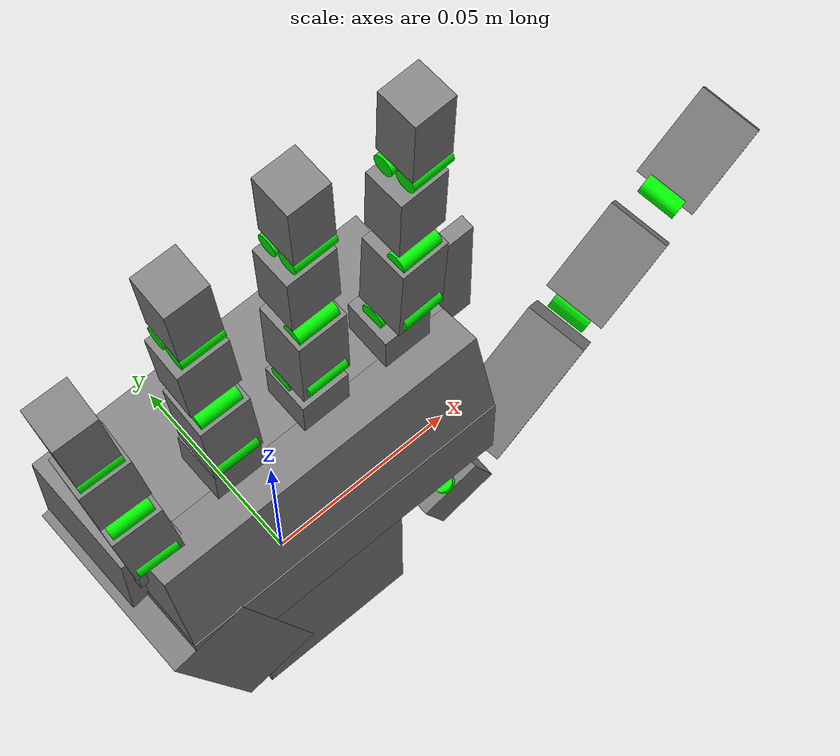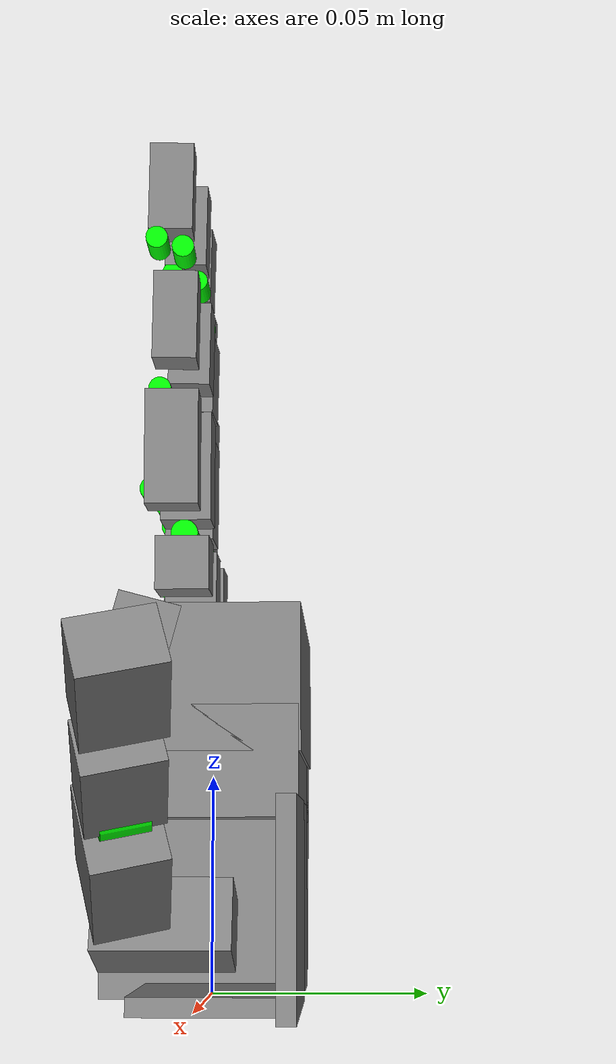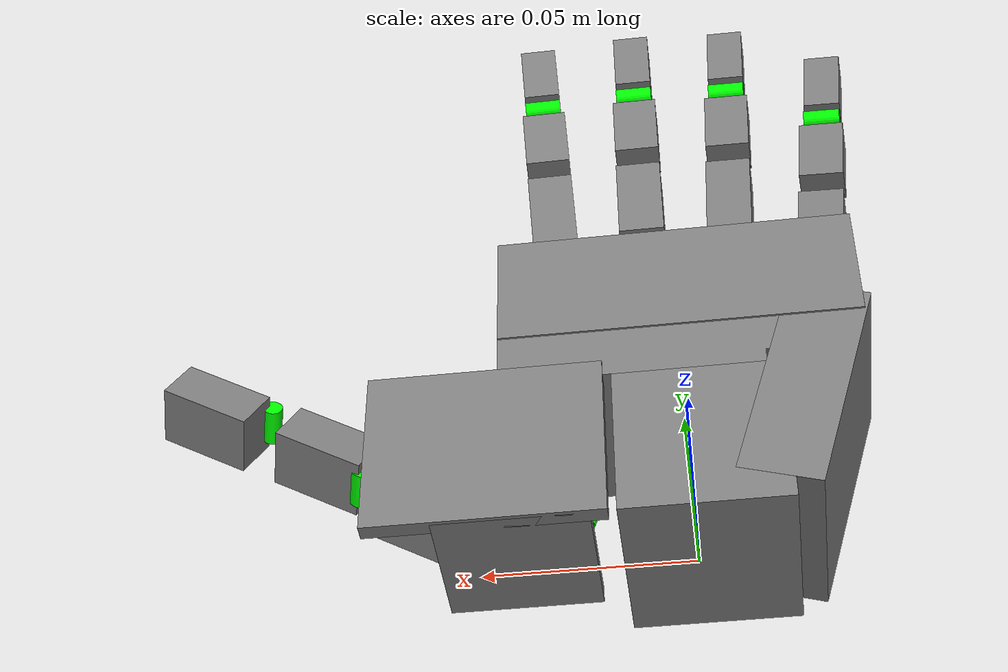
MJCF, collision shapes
<?xml version="1.0" ?>
<mujoco model="aeropiper_right_hand">

  <compiler angle="radian" meshdir="../robots/aeropiper/assets"/>

  <default>

    <default class="piper">

      <joint frictionloss="2.0" armature="0.005" damping="20.0"/>

      <position inheritrange="1" forcerange="-100 100" kp="100"/>

    </default>

    <default class="finger">

      <joint frictionloss="0" armature="0.005" damping="20.0" type="slide"/>

      <position inheritrange="1" forcerange="-10 10" kp="100"/>

    </default>

    <default class="visual">

      <joint frictionloss="2.0" armature="0.005" damping="20.0"/>

      <position inheritrange="1" forcerange="-100 100" kp="100"/>

      <geom group="2" type="mesh" contype="0" conaffinity="0" density="0" name="auto_geom_0"/>

    </default>

    <default class="collision">

      <joint frictionloss="2.0" armature="0.005" damping="20.0"/>

      <position inheritrange="1" forcerange="-100 100" kp="100"/>

      <geom group="3" type="capsule" name="auto_geom_1"/>

    </default>

    <default class="tetheria_rh">

      <geom group="3" friction="1.2 0.05 0.005" solref="0.005 1" solimp="0.95 0.99 0.0005" name="auto_geom_2"/>

      <joint axis="0 0 -1" damping="0.02" armature="0.001559127" frictionloss="0.02"/>

    </default>

    <default class="hand_visual">

      <geom group="2" friction="1.2 0.05 0.005" solref="0.005 1" solimp="0.95 0.99 0.0005" type="mesh" contype="0" conaffinity="0" density="0" material="white" name="auto_geom_3"/>

      <joint axis="0 0 -1" damping="0.02" armature="0.001559127" frictionloss="0.02"/>

    </default>

    <default class="tip">

      <geom group="3" friction="0.7 0.05 0.0002" solref="0.005 1" solimp="0.95 0.99 0.0005" size="0.01 0.012 0.016" pos="-0.0012969 -0.0335524 0.0145207" quat="0.703552 0.709596 -0.0292107 -0.0252203" type="box" rgba=".5 .5 .5 .3" name="auto_geom_4"/>

      <joint axis="0 0 -1" damping="0.02" armature="0.001559127" frictionloss="0.02"/>

    </default>

    <default class="thumb_tip">

      <geom group="3" friction="0.7 0.05 0.0002" solref="0.005 1" solimp="0.95 0.99 0.0005" size="0.01 0.012 0.016" pos="-0.00127744 -0.0455619 -0.0144774" quat="0.708101 0.705072 -0.0294902 -0.024426" type="box" rgba=".5 .5 .5 .3" name="auto_geom_5"/>

      <joint axis="0 0 -1" damping="0.02" armature="0.001559127" frictionloss="0.02"/>

    </default>

    <default class="rot">

      <geom group="3" friction="1.2 0.05 0.005" solref="0.005 1" solimp="0.95 0.99 0.0005" name="auto_geom_6"/>

      <joint axis="0 0 -1" damping="0.1" armature="0.001559127" frictionloss="0.02" range="0 1.5708"/>

      <position ctrlrange="-0.1 1.58"/>

    </default>

    <default class="pip">

      <geom group="3" friction="1.2 0.05 0.005" solref="0.005 1" solimp="0.95 0.99 0.0005" name="auto_geom_7"/>

      <joint axis="0 0 -1" damping="0.05" armature="0.001559127" frictionloss="0.02" range="0 1.5708"/>

      <position ctrlrange="-0.1 1.58"/>

    </default>

    <default class="dip">

      <geom group="3" friction="1.2 0.05 0.005" solref="0.005 1" solimp="0.95 0.99 0.0005" name="auto_geom_8"/>

      <joint axis="0 0 -1" damping="0.05" armature="0.001559127" frictionloss="0.02" range="0 1.5708"/>

      <position ctrlrange="-0.1 1.58"/>

    </default>

    <default class="thumb_cmc">

      <geom group="3" friction="1.2 0.05 0.005" solref="0.005 1" solimp="0.95 0.99 0.0005" name="auto_geom_9"/>

      <joint axis="0 0 -1" damping="0.02" armature="0.001559127" frictionloss="0.02" range="0 1.7453"/>

      <position ctrlrange="-0.1 1.75"/>

    </default>

    <default class="thumb_axl">

      <geom group="3" friction="1.2 0.05 0.005" solref="0.005 1" solimp="0.95 0.99 0.0005" name="auto_geom_10"/>

      <joint axis="0 0 -1" damping="0.02" armature="0.001559127" frictionloss="0.02" range="0 1.4"/>

      <position ctrlrange="-0.1 1.5"/>

    </default>

    <default class="thumb_mcp">

      <geom group="3" friction="1.2 0.05 0.005" solref="0.005 1" solimp="0.95 0.99 0.0005" name="auto_geom_11"/>

      <joint axis="0 0 -1" damping="0.02" armature="0.001559127" frictionloss="0.02" range="0 1.2217"/>

      <position ctrlrange="-0.1 1.3"/>

    </default>

    <default class="thumb_ipl">

      <geom group="3" friction="1.2 0.05 0.005" solref="0.005 1" solimp="0.95 0.99 0.0005" name="auto_geom_12"/>

      <joint axis="0 0 -1" damping="0.02" armature="0.001559127" frictionloss="0.02" range="0 1.2217"/>

      <position ctrlrange="-0.1 1.3"/>

    </default>

    <default class="cmc_spring">

      <geom group="3" friction="1.2 0.05 0.005" solref="0.005 1" solimp="0.95 0.99 0.0005" name="auto_geom_13"/>

      <joint axis="0 0 -1" damping="0.02" armature="0.001559127" frictionloss="0.02"/>

      <tendon stiffness="1897" springlength="0.013" width="0.001" rgba="0 0.5 0.5 1" group="2"/>

    </default>

    <default class="distal_spring">

      <geom group="3" friction="1.2 0.05 0.005" solref="0.005 1" solimp="0.95 0.99 0.0005" name="auto_geom_14"/>

      <joint axis="0 0 -1" damping="0.02" armature="0.001559127" frictionloss="0.02"/>

      <tendon stiffness="4000" springlength="0.021336" width="0.001" rgba="0.5 0.5 0 1" group="2"/>

    </default>

    <default class="mcp_spring">

      <geom group="3" friction="1.2 0.05 0.005" solref="0.005 1" solimp="0.95 0.99 0.0005" name="auto_geom_15"/>

      <joint axis="0 0 -1" damping="0.02" armature="0.001559127" frictionloss="0.02"/>

      <tendon stiffness="352" springlength="0.011376" width="0.001" rgba="0 0.5 0.5 1" group="2"/>

    </default>

    <default class="mcp_tendon">

      <geom group="3" friction="1.2 0.05 0.005" solref="0.005 1" solimp="0.95 0.99 0.0005" name="auto_geom_16"/>

      <joint axis="0 0 -1" damping="0.02" armature="0.001559127" frictionloss="0.02"/>

      <tendon width="0.001" rgba="1 0 0 1" group="2"/>

    </default>

    <default class="flex_tendon">

      <geom group="3" friction="1.2 0.05 0.005" solref="0.005 1" solimp="0.95 0.99 0.0005" name="auto_geom_17"/>

      <joint axis="0 0 -1" damping="0.02" armature="0.001559127" frictionloss="0.02"/>

      <tendon width="0.001" rgba="0 0 1 1" group="2"/>

    </default>

  </default>

  <asset>

    <material name="gray_mat" rgba="0.59 0.59 0.59 1"/>

    <material name="light_gray_mat" rgba="0.98 0.98 0.98 1"/>

    <material name="light_medium_gray_mat" rgba="0.85 0.85 0.85 1"/>

    <material name="dark_gray_mat" rgba="0.086 0.086 0.086 1"/>

    <material name="darker_gray_mat" rgba="0.14 0.14 0.14 1"/>

    <material name="white_mat" rgba="1 1 1 1"/>

    <material name="red_mat" rgba="0.82 0.15 0.15 1"/>

    <material name="black_mat" rgba="0 0 0 1"/>

    <material name="light_blue" rgba="0.79 0.82 0.93 1"/>

    <mesh file="../robots/aeropiper/assets/link2_0.obj" name="link2_0"/>

    <mesh file="../robots/aeropiper/assets/link2_1.obj" name="link2_1"/>

    <mesh file="../robots/aeropiper/assets/link2_2.obj" name="link2_2"/>

    <mesh file="../robots/aeropiper/assets/link2_3.obj" name="link2_3"/>

    <mesh file="../robots/aeropiper/assets/link2_4.obj" name="link2_4"/>

    <mesh file="../robots/aeropiper/assets/link2_5.obj" name="link2_5"/>

    <mesh file="../robots/aeropiper/assets/link2_6.obj" name="link2_6"/>

    <mesh file="../robots/aeropiper/assets/link2_7.obj" name="link2_7"/>

    <mesh file="../robots/aeropiper/assets/link2_8.obj" name="link2_8"/>

    <mesh file="../robots/aeropiper/assets/link2_9.obj" name="link2_9"/>

    <mesh file="../robots/aeropiper/assets/link2_10.obj" name="link2_10"/>

    <mesh file="../robots/aeropiper/assets/link2_11.obj" name="link2_11"/>

    <mesh file="../robots/aeropiper/assets/link2_12.obj" name="link2_12"/>

    <mesh file="../robots/aeropiper/assets/link2_13.obj" name="link2_13"/>

    <mesh file="../robots/aeropiper/assets/link2_14.obj" name="link2_14"/>

    <mesh file="../robots/aeropiper/assets/link2_15.obj" name="link2_15"/>

    <mesh file="../robots/aeropiper/assets/link2_16.obj" name="link2_16"/>

    <mesh file="../robots/aeropiper/assets/link2_17.obj" name="link2_17"/>

    <mesh file="../robots/aeropiper/assets/link2_18.obj" name="link2_18"/>

    <mesh file="../robots/aeropiper/assets/link2_19.obj" name="link2_19"/>

    <mesh file="../robots/aeropiper/assets/link2_20.obj" name="link2_20"/>

    <mesh file="../robots/aeropiper/assets/link2_21.obj" name="link2_21"/>

    <mesh file="../robots/aeropiper/assets/link2_22.obj" name="link2_22"/>

    <mesh file="../robots/aeropiper/assets/link2_23.obj" name="link2_23"/>

    <mesh file="../robots/aeropiper/assets/link2_24.obj" name="link2_24"/>

    <mesh file="../robots/aeropiper/assets/link2_25.obj" name="link2_25"/>

    <mesh file="../robots/aeropiper/assets/link2_26.obj" name="link2_26"/>

    <mesh file="../robots/aeropiper/assets/link2_27.obj" name="link2_27"/>

    <mesh file="../robots/aeropiper/assets/link2_28.obj" name="link2_28"/>

    <mesh file="../robots/aeropiper/assets/link2_29.obj" name="link2_29"/>

    <mesh file="../robots/aeropiper/assets/link2_30.obj" name="link2_30"/>

    <mesh file="../robots/aeropiper/assets/link2_31.obj" name="link2_31"/>

    <mesh file="../robots/aeropiper/assets/link3_0.obj" name="link3_0"/>

    <mesh file="../robots/aeropiper/assets/link3_1.obj" name="link3_1"/>

    <mesh file="../robots/aeropiper/assets/link3_2.obj" name="link3_2"/>

    <mesh file="../robots/aeropiper/assets/link3_3.obj" name="link3_3"/>

    <mesh file="../robots/aeropiper/assets/link3_4.obj" name="link3_4"/>

    <mesh file="../robots/aeropiper/assets/link3_5.obj" name="link3_5"/>

    <mesh file="../robots/aeropiper/assets/link3_7.obj" name="link3_7"/>

    <mesh file="../robots/aeropiper/assets/link3_8.obj" name="link3_8"/>

    <mesh file="../robots/aeropiper/assets/link3_9.obj" name="link3_9"/>

    <mesh file="../robots/aeropiper/assets/link3_10.obj" name="link3_10"/>

    <mesh file="../robots/aeropiper/assets/link3_11.obj" name="link3_11"/>

    <mesh file="../robots/aeropiper/assets/link3_12.obj" name="link3_12"/>

    <mesh file="../robots/aeropiper/assets/link3_13.obj" name="link3_13"/>

    <mesh file="../robots/aeropiper/assets/link3_14.obj" name="link3_14"/>

    <mesh file="../robots/aeropiper/assets/link3_15.obj" name="link3_15"/>

    <mesh file="../robots/aeropiper/assets/link3_16.obj" name="link3_16"/>

    <mesh file="../robots/aeropiper/assets/link3_17.obj" name="link3_17"/>

    <mesh file="../robots/aeropiper/assets/link3_18.obj" name="link3_18"/>

    <mesh file="../robots/aeropiper/assets/link3_19.obj" name="link3_19"/>

    <mesh file="../robots/aeropiper/assets/link3_20.obj" name="link3_20"/>

    <mesh file="../robots/aeropiper/assets/link3_21.obj" name="link3_21"/>

    <mesh file="../robots/aeropiper/assets/link3_22.obj" name="link3_22"/>

    <mesh file="../robots/aeropiper/assets/link3_23.obj" name="link3_23"/>

    <mesh file="../robots/aeropiper/assets/link3_24.obj" name="link3_24"/>

    <mesh file="../robots/aeropiper/assets/link3_25.obj" name="link3_25"/>

    <mesh file="../robots/aeropiper/assets/link3_26.obj" name="link3_26"/>

    <mesh file="../robots/aeropiper/assets/link3_27.obj" name="link3_27"/>

    <mesh file="../robots/aeropiper/assets/link3_28.obj" name="link3_28"/>

    <mesh file="../robots/aeropiper/assets/link4_2.obj" name="link4_2"/>

    <mesh file="../robots/aeropiper/assets/link4_3.obj" name="link4_3"/>

    <mesh file="../robots/aeropiper/assets/link4_4.obj" name="link4_4"/>

    <mesh file="../robots/aeropiper/assets/link4_5.obj" name="link4_5"/>

    <mesh file="../robots/aeropiper/assets/link4_6.obj" name="link4_6"/>

    <mesh file="../robots/aeropiper/assets/link5_2.obj" name="link5_2"/>

    <mesh file="../robots/aeropiper/assets/link5_3.obj" name="link5_3"/>

    <mesh file="../robots/aeropiper/assets/link5_4.obj" name="link5_4"/>

    <mesh file="../robots/aeropiper/assets/link5_5.obj" name="link5_5"/>

    <mesh file="../robots/aeropiper/assets/link5_6.obj" name="link5_6"/>

    <mesh file="../robots/aeropiper/assets/link5_7.obj" name="link5_7"/>

    <mesh file="../robots/aeropiper/assets/link5_8.obj" name="link5_8"/>

    <mesh name="base_link" file="../robots/aeropiper/assets/base_link.stl"/>

    <mesh name="link1" file="../robots/aeropiper/assets/link1.stl"/>

    <mesh name="link2" file="../robots/aeropiper/assets/link2.stl"/>

    <mesh name="link2_gray" file="../robots/aeropiper/assets/link2_gray.stl"/>

    <mesh name="link3" file="../robots/aeropiper/assets/link3.stl"/>

    <mesh name="link4" file="../robots/aeropiper/assets/link4.stl"/>

    <mesh name="link5" file="../robots/aeropiper/assets/link5.stl"/>

    <mesh file="../robots/aeropiper/assets/link6.stl" name="link6"/>

    <material name="black" rgba="0.2 0.2 0.2 1"/>

    <material name="gray" rgba="0.5 0.5 0.5 1"/>

    <material name="white" rgba="0.7 0.7 0.7 1"/>

    <mesh name="right_tetheria_mount" file="../robots/aeropiper/assets/right_palm_mount_link.STL"/>

    <mesh name="right_frame_link" content_type="model/stl" file="../robots/aeropiper/assets/base_link.STL"/>

    <mesh name="right_index_f_link" content_type="model/stl" file="../robots/aeropiper/assets/right_index_f_link.STL"/>

    <mesh name="right_index_proximal_link" content_type="model/stl" file="../robots/aeropiper/assets/right_index_proximal_link.STL"/>

    <mesh name="right_index_middle_link" content_type="model/stl" file="../robots/aeropiper/assets/right_index_middle_link.STL"/>

    <mesh name="right_index_distal_link" content_type="model/stl" file="../robots/aeropiper/assets/right_index_distal_link.STL"/>

    <mesh name="right_index_tip_link" content_type="model/stl" file="../robots/aeropiper/assets/right_index_tip_link.STL"/>

    <mesh name="right_middle_f_link" content_type="model/stl" file="../robots/aeropiper/assets/right_middle_f_link.STL"/>

    <mesh name="right_middle_proximal_link" content_type="model/stl" file="../robots/aeropiper/assets/right_middle_proximal_link.STL"/>

    <mesh name="right_middle_middle_link" content_type="model/stl" file="../robots/aeropiper/assets/right_middle_middle_link.STL"/>

    <mesh name="right_middle_distal_link" content_type="model/stl" file="../robots/aeropiper/assets/right_middle_distal_link.STL"/>

    <mesh name="right_middle_tip_link" content_type="model/stl" file="../robots/aeropiper/assets/right_middle_tip_link.STL"/>

    <mesh name="right_ring_f_link" content_type="model/stl" file="../robots/aeropiper/assets/right_ring_f_link.STL"/>

    <mesh name="right_ring_proximal_link" content_type="model/stl" file="../robots/aeropiper/assets/right_ring_proximal_link.STL"/>

    <mesh name="right_ring_middle_link" content_type="model/stl" file="../robots/aeropiper/assets/right_ring_middle_link.STL"/>

    <mesh name="right_ring_distal_link" content_type="model/stl" file="../robots/aeropiper/assets/right_ring_distal_link.STL"/>

    <mesh name="right_ring_tip_link" content_type="model/stl" file="../robots/aeropiper/assets/right_ring_tip_link.STL"/>

    <mesh name="right_pinky_f_link" content_type="model/stl" file="../robots/aeropiper/assets/right_pinky_f_link.STL"/>

    <mesh name="right_pinky_proximal_link" content_type="model/stl" file="../robots/aeropiper/assets/right_pinky_proximal_link.STL"/>

    <mesh name="right_pinky_middle_link" content_type="model/stl" file="../robots/aeropiper/assets/right_pinky_middle_link.STL"/>

    <mesh name="right_pinky_distal_link" content_type="model/stl" file="../robots/aeropiper/assets/right_pinky_distal_link.STL"/>

    <mesh name="right_pinky_tip_link" content_type="model/stl" file="../robots/aeropiper/assets/right_pinky_tip_link.STL"/>

    <mesh name="right_t_link" content_type="model/stl" file="../robots/aeropiper/assets/right_t_link.STL"/>

    <mesh name="right_thumb_mcp_link" content_type="model/stl" file="../robots/aeropiper/assets/right_thumb_mcp_link.STL"/>

    <mesh name="right_thumb_proximal_link" content_type="model/stl" file="../robots/aeropiper/assets/right_thumb_proximal_link.STL"/>

    <mesh name="right_thumb_distal_link" content_type="model/stl" file="../robots/aeropiper/assets/right_thumb_distal_link.STL"/>

    <mesh name="right_thumb_tip_link" content_type="model/stl" file="../robots/aeropiper/assets/right_thumb_tip_link.STL"/>

    <mesh name="intel_realsense_d435_right" file="../robots/aeropiper/frame/camera_d435.obj" scale="0.028 0.028 0.028"/>

  </asset>

  <worldbody>

    <body name="right_hand" pos="0 0 0" quat="1 0 0 0">

      <site name="ft_frame" pos="0 0 0" size="0.01" type="sphere" rgba="1 0 0 0" group="1"/>

      <body name="eef" pos="0 0 0" quat="1 0 0 0">

        <site name="grip_site" pos="0 -0.03 0.14" size="0.01 0.01 0.01" type="sphere" rgba="1 1 0 0" group="2"/>

        <site name="grip_site_cylinder" pos="0 -0.03 0.14" quat="-0.5 -0.5 -0.5 0.5" size="0.005 0.5" type="cylinder" rgba="0 1 0 0" group="1"/>

        <site name="ee" pos="0 -0.03 0.14" size="0.005" type="sphere" rgba="0 0 0 0" group="1"/>

        <site name="ee_x" pos="0.05 -0.03 0.14" size="0.005 0.05" type="cylinder" quat="0.707105 0 0.707108 0" rgba="1 0 0 0" group="1"/>

        <site name="ee_y" pos="0 0.02 0.14" size="0.005 0.05" type="cylinder" quat="0.707105 0.707108 0 0" rgba="0 1 0 0" group="1"/>

        <site name="ee_z" pos="0 -0.03 0.19" size="0.005 0.05" type="cylinder" rgba="0 0 1 0" group="1"/>

      </body>

      <body name="palm" pos="0 0 0" quat="1 0 0 0">

        <geom type="mesh" class="hand_visual" mesh="right_frame_link" name="auto_geom_18"/>

        <geom name="palm_collision_1" size="0.006 0.006 0.006" pos="0.031 -0.0045 0.096" quat="-0.5 -0.5 -0.5 0.5" type="box"/>

        <site name="palm_collision_1" pos="0.031 -0.017 0.076" group="3" size="0.0001"/>

        <geom name="palm_collision_2" size="0.006 0.006 0.006" pos="0.009 -0.0045 0.096" quat="-0.5 -0.5 -0.5 0.5" type="box"/>

        <site name="palm_collision_2" pos="0.009 -0.017 0.076" group="3" size="0.0001"/>

        <geom name="palm_collision_3" size="0.006 0.006 0.006" pos="-0.014 -0.0045 0.096" quat="-0.5 -0.5 -0.5 0.5" type="box"/>

        <site name="palm_collision_3" pos="-0.014 -0.017 0.076" group="3" size="0.0001"/>

        <geom name="palm_collision_4" size="0.006 0.006 0.006" pos="-0.036 -0.0045 0.081" quat="-0.5 -0.5 -0.5 0.5" type="box"/>

        <site name="palm_collision_4" pos="-0.036 -0.017 0.061" group="3" size="0.0001"/>

        <geom name="palm_collision_5" size="0.029 0.01 0.023" pos="-0.028 -0.0015 0.034" quat="0.420605 -0.420605 -0.568411 -0.568411" type="box" group="3"/>

        <geom name="palm_collision_6" size="0.016 0.044 0.015" pos="0 0.007 0.07" quat="-0.5 -0.5 -0.5 0.5" type="box" group="3"/>

        <geom name="palm_collision_7" size="0.0071 0.042 0.013" pos="0.002 -0.014 0.0745" quat="0.700443 -0.092458 -0.092458 -0.700443" type="box" group="3"/>

        <geom name="palm_collision_8" size="0.012 0.042 0.023" pos="0.002 -0.0015 0.052" quat="-0.5 -0.5 -0.5 0.5" type="box" group="3"/>

        <geom name="palm_collision_9" size="0.022 0.020 0.023" pos="-0.003 -0.0015 0.022" quat="-0.5 -0.5 -0.5 0.5" type="box" group="3"/>

        <geom name="palm_collision_10" size="0.002 0.018 0.017" pos="0.041 0.004 0.002" quat="-0.5 -0.5 -0.5 0.5" type="box" group="3"/>

        <geom name="palm_collision_11" size="0.022 0.028 0.002" pos="0.047 0.02 0.022" quat="-0.5 -0.5 -0.5 0.5" type="box" group="3"/>

        <body name="right_index_f_link" pos="0.031448 -0.004172 0.10003" quat="0.9995050682 -0.0004568570312 0.02617300179 0.01744660119">

          <inertial pos="0 -0.0 0.0017" mass="0.000169697" diaginertia="1.29009e-09 1.29009e-09 7.6801e-10"/>

          <geom type="mesh" mesh="right_index_f_link" class="hand_visual" name="auto_geom_19"/>

          <site name="if_f_spring1_s1" pos="0 0.005 0" group="4" size="0.0005"/>

          <geom name="if_f_spring1_g0" rgba="0 1 0 1" size="0.003 0.005" pos="0 -0.0 0.0029" quat="0.7071067812 0 -0.7071067812 0" type="cylinder" class="hand_visual" group="2"/>

          <body name="right_index_proximal_link" pos="0 -0.0 0.0034">

            <inertial pos="-6.14568e-08 -0.00357858 0.0205176" quat="0.7068582183 -0.01793740554 -0.01793850554 -0.7069002183" mass="0.00600337" diaginertia="8.89988e-07 8.65278e-07 2.05352e-07"/>

            <joint name="right_index_mcp_flex" pos="0 -0.0 0" axis="1 0 0" range="0 1.5708" class="rot"/>

            <geom type="mesh" mesh="right_index_proximal_link" class="hand_visual" name="auto_geom_20"/>

            <geom size="0.006 0.006 0.013" pos="0 -0.003 0.019" type="box" name="auto_geom_21"/>

            <site name="if_proximal_tendon0_s0" pos="0 -0.011 0.0095" group="4" size="0.0001"/>

            <geom name="if_proximal_tendon0_g0" rgba="0 1 0 1" size="0.0025 0.005" pos="0 -0.0075 0.0095" quat="0.7071067812 0 -0.7071067812 0" type="cylinder" class="hand_visual" group="2"/>

            <site name="if_proximal_tendon0_s1" pos="0 -0.0063 0.0135" group="4" size="0.0001"/>

            <geom name="if_proximal_tendon2" rgba="0 1 0 1" size="0.0025 0.005" pos="0 -0.0057 0.0173" quat="0.7071067812 0 -0.7071067812 0" type="cylinder" class="hand_visual" group="2"/>

            <site name="if_proximal_tendon0_s2" pos="0 -0.0022 0.0173" group="4" size="0.0001"/>

            <geom name="if_proximal_tendon3" rgba="0 1 0 1" size="0.0025 0.005" pos="0 -0.0057 0.0323" quat="0.7071067812 0 -0.7071067812 0" type="cylinder" class="hand_visual" group="2"/>

            <site name="if_proximal_tendon0_s3" pos="0 -0.0025 0.03" group="4" size="0.0001"/>

            <site name="if_proximal_tendon0_s4" pos="0 -0.0025 0.0333" group="4" size="0.0001"/>

            <geom name="if_proximal_tendon1_g0" rgba="0 1 0 1" size="0.003 0.005" pos="0 -0.0018 0.043" quat="0.7071067812 0 -0.7071067812 0" type="cylinder" class="hand_visual" group="2"/>

            <site name="if_proximal_tendon1_s0" pos="0 -0.0048 0.04" group="4" size="0.0001"/>

            <site name="if_proximal_tendon1_s1" pos="0 0.0012 0.035" group="4" size="0.0001"/>

            <site name="if_proximal_spring0_s0" pos="0 0.0012 0.011" group="4" size="0.0005"/>

            <site name="if_proximal_spring0_s1" pos="0 0.0012 0.04" group="4" size="0.0005"/>

            <site name="if_proximal_spring1_s0" pos="0 0.003 0.004" group="4" size="0.0005"/>

            <body name="right_index_middle_link" pos="0 -0.0014554 0.043" quat="0.9999619243 -0.00872638934 0 0">

              <inertial pos="2.38785e-08 -0.00110516 0.00939619" quat="0.7068326469 0.01919079041 0.01920319041 -0.7068596469" mass="0.0023759" diaginertia="1.62521e-07 1.35575e-07 7.42871e-08"/>

              <joint name="right_index_pip" pos="0 -0.0 0" axis="1 0 0" range="0 1.5708" class="pip"/>

              <geom type="mesh" mesh="right_index_middle_link" class="hand_visual" name="auto_geom_22"/>

              <geom size="0.006 0.005 0.010" pos="0 -0.001 0.006" type="box" name="auto_geom_23"/>

              <site name="if_middle_spring0_s0" pos="0 0.004 0.003" group="4" size="0.0005"/>

              <body name="right_index_distal_link" pos="0 0.00036966 0.021997" quat="0.9999998599 -0.0005293499258 0 0">

                <inertial pos="-0.00184412 0.000358323 0.0107277" quat="0.6962529814 0.1844279951 0.05006349867 -0.6918899816" mass="0.00309312" diaginertia="1.89064e-07 1.75544e-07 6.39413e-08"/>

                <joint name="right_index_dip" pos="0 -0.0 0" axis="1 0 0" range="0 1.5708" class="dip"/>

                <geom type="mesh" mesh="right_index_distal_link" class="hand_visual" name="auto_geom_24"/>

                <geom pos="0 0.0033789 0.024944" quat="0.9999987472 0.0015828996 0 0" type="mesh" mesh="right_index_tip_link" class="hand_visual" name="auto_geom_25"/>

                <geom name="if_tip" size="0.005 0.005 0.01" pos="0 -0.003 0.014" type="box"/>

                <site name="if_tip" pos="0 -0.003 0.023" group="4"/>

                <site name="if_dip_tendon0_s0" pos="0 -0.0086 0.003" group="4" size="0.0001"/>

                <geom name="if_dip_tendon0_g0" rgba="0 1 0 1" size="0.0025 0.005" pos="0 -0.006 0.002" quat="0.7071067812 0 -0.7071067812 0" type="cylinder" class="hand_visual" group="2"/>

                <site name="if_dip_tendon0_s2" pos="0 -0.0015 0.0075" group="4" size="0.0001"/>

                <site name="if_dip_tendon1_s0" pos="0 0.0025 0.015" group="4" size="0.0001"/>

                <geom name="if_dip_tendon1_g0" rgba="0 1 0 1" size="0.0025 0.005" pos="0 -0.0 0" quat="0.7071067812 0 -0.7071067812 0" type="cylinder" class="hand_visual" group="2"/>

                <site name="if_dip_tendon1_s1" pos="0 0.0025 -0.002" group="4" size="0.0001"/>

              </body>

            </body>

          </body>

        </body>

        <body name="right_middle_f_link" pos="0.0085 -0.003 0.10061">

          <inertial pos="0 -0.0 0.0017" mass="0.000169697" diaginertia="1.29009e-09 1.29009e-09 7.6801e-10"/>

          <geom type="mesh" mesh="right_middle_f_link" class="hand_visual" name="auto_geom_26"/>

          <site name="mf_f_spring1_s1" pos="0 0.005 0" group="4" size="0.0005"/>

          <geom name="mf_f_spring1_g0" rgba="0 1 0 1" size="0.003 0.005" pos="0 -0.0 0.0029" quat="0.7071067812 0 -0.7071067812 0" type="cylinder" class="hand_visual" group="2"/>

          <body name="right_middle_proximal_link" pos="0 -0.0 0.0034">

            <inertial pos="-6.14568e-08 -0.00357858 0.0205176" quat="0.7068582183 -0.01793740554 -0.01793850554 -0.7069002183" mass="0.00600337" diaginertia="8.89988e-07 8.65278e-07 2.05352e-07"/>

            <joint name="right_middle_mcp_flex" pos="0 -0.0 0" axis="1 0 0" range="0 1.5708" class="rot"/>

            <geom type="mesh" mesh="right_middle_proximal_link" class="hand_visual" name="auto_geom_27"/>

            <geom size="0.006 0.006 0.013" pos="0 -0.003 0.019" type="box" name="auto_geom_28"/>

            <site name="mf_proximal_tendon0_s0" pos="0 -0.011 0.0095" group="4" size="0.0001"/>

            <geom name="mf_proximal_tendon0_g0" rgba="0 1 0 1" size="0.0025 0.005" pos="0 -0.0075 0.0095" quat="0.7071067812 0 -0.7071067812 0" type="cylinder" class="hand_visual" group="2"/>

            <site name="mf_proximal_tendon0_s1" pos="0 -0.0063 0.0135" group="4" size="0.0001"/>

            <geom name="mf_proximal_tendon2" rgba="0 1 0 1" size="0.0025 0.005" pos="0 -0.0057 0.0173" quat="0.7071067812 0 -0.7071067812 0" type="cylinder" class="hand_visual" group="2"/>

            <site name="mf_proximal_tendon0_s2" pos="0 -0.0022 0.0173" group="4" size="0.0001"/>

            <geom name="mf_proximal_tendon3" rgba="0 1 0 1" size="0.0025 0.005" pos="0 -0.0057 0.0323" quat="0.7071067812 0 -0.7071067812 0" type="cylinder" class="hand_visual" group="2"/>

            <site name="mf_proximal_tendon0_s3" pos="0 -0.0025 0.03" group="4" size="0.0001"/>

            <site name="mf_proximal_tendon0_s4" pos="0 -0.0025 0.0333" group="4" size="0.0001"/>

            <geom name="mf_proximal_tendon1_g0" rgba="0 1 0 1" size="0.003 0.005" pos="0 -0.0018 0.043" quat="0.7071067812 0 -0.7071067812 0" type="cylinder" class="hand_visual" group="2"/>

            <site name="mf_proximal_tendon1_s0" pos="0 -0.0048 0.04" group="4" size="0.0001"/>

            <site name="mf_proximal_tendon1_s1" pos="0 0.0012 0.035" group="4" size="0.0001"/>

            <site name="mf_proximal_spring0_s0" pos="0 0.0012 0.011" group="4" size="0.0005"/>

            <site name="mf_proximal_spring0_s1" pos="0 0.0012 0.04" group="4" size="0.0005"/>

            <site name="mf_proximal_spring1_s0" pos="0 0.003 0.004" group="4" size="0.0005"/>

            <body name="right_middle_middle_link" pos="0 -0.0014554 0.043" quat="0.9999619243 -0.00872638934 0 0">

              <inertial pos="2.38785e-08 -0.00110516 0.00939619" quat="0.7068326469 0.01919079041 0.01920319041 -0.7068596469" mass="0.0023759" diaginertia="1.62521e-07 1.35575e-07 7.42871e-08"/>

              <joint name="right_middle_pip" pos="0 -0.0 0" axis="1 0 0" range="0 1.5708" class="pip"/>

              <geom type="mesh" mesh="right_middle_middle_link" class="hand_visual" name="auto_geom_29"/>

              <geom size="0.006 0.005 0.010" pos="0 -0.001 0.006" type="box" name="auto_geom_30"/>

              <site name="mf_middle_spring0_s0" pos="0 0.004 0.003" group="4" size="0.0005"/>

              <body name="right_middle_distal_link" pos="0 0.00036966 0.021997" quat="0.9999998599 -0.0005293499258 0 0">

                <inertial pos="-0.00184412 0.000358323 0.0107277" quat="0.6962529814 0.1844279951 0.05006349867 -0.6918899816" mass="0.00309312" diaginertia="1.89064e-07 1.75544e-07 6.39413e-08"/>

                <joint name="right_middle_dip" pos="0 -0.0 0" axis="1 0 0" range="0 1.5708" class="dip"/>

                <geom type="mesh" mesh="right_middle_distal_link" class="hand_visual" name="auto_geom_31"/>

                <geom pos="0 0.0033789 0.024944" quat="0.9999987472 0.0015828996 0 0" type="mesh" mesh="right_middle_tip_link" class="hand_visual" name="auto_geom_32"/>

                <geom name="mf_tip" size="0.005 0.005 0.01" pos="0 -0.003 0.014" type="box"/>

                <site name="mf_tip" pos="0 -0.003 0.023" group="4"/>

                <site name="mf_dip_tendon0_s0" pos="0 -0.0086 0.003" group="4" size="0.0001"/>

                <geom name="mf_dip_tendon0_g0" rgba="0 1 0 1" size="0.0025 0.005" pos="0 -0.006 0.002" quat="0.7071067812 0 -0.7071067812 0" type="cylinder" class="hand_visual" group="2"/>

                <site name="mf_dip_tendon0_s2" pos="0 -0.0015 0.0075" group="4" size="0.0001"/>

                <site name="mf_dip_tendon1_s0" pos="0 0.0025 0.015" group="4" size="0.0001"/>

                <geom name="mf_dip_tendon1_g0" rgba="0 1 0 1" size="0.0025 0.005" pos="0 -0.0 0" quat="0.7071067812 0 -0.7071067812 0" type="cylinder" class="hand_visual" group="2"/>

                <site name="mf_dip_tendon1_s1" pos="0 0.0025 -0.002" group="4" size="0.0001"/>

              </body>

            </body>

          </body>

        </body>

        <body name="right_ring_f_link" pos="-0.014448 -0.004172 0.10003" quat="0.9995050682 -0.0004568570312 -0.02617300179 -0.01744660119">

          <inertial pos="0 -0.0 0.0017" mass="0.000169697" diaginertia="1.29009e-09 1.29009e-09 7.6801e-10"/>

          <geom type="mesh" mesh="right_ring_f_link" class="hand_visual" name="auto_geom_33"/>

          <site name="rf_f_spring1_s1" pos="0 0.005 0" group="4" size="0.0005"/>

          <geom name="rf_f_spring1_g0" rgba="0 1 0 1" size="0.003 0.005" pos="0 -0.0 0.0029" quat="0.7071067812 0 -0.7071067812 0" type="cylinder" class="hand_visual" group="2"/>

          <body name="right_ring_proximal_link" pos="0 -0.0 0.0034">

            <inertial pos="-4.27735e-08 -0.00357857 0.0205176" quat="0.7068792098 -0.01793830532 -0.01793830532 -0.7068792098" mass="0.00600337" diaginertia="8.89987e-07 8.65277e-07 2.05351e-07"/>

            <joint name="right_ring_mcp_flex" pos="0 -0.0 0" axis="1 0 0" range="0 1.5708" class="rot"/>

            <geom type="mesh" mesh="right_ring_proximal_link" class="hand_visual" name="auto_geom_34"/>

            <geom size="0.006 0.006 0.013" pos="0 -0.003 0.019" type="box" name="auto_geom_35"/>

            <site name="rf_proximal_tendon0_s0" pos="0 -0.011 0.0095" group="4" size="0.0001"/>

            <geom name="rf_proximal_tendon0_g0" rgba="0 1 0 1" size="0.0025 0.005" pos="0 -0.0075 0.0095" quat="0.7071067812 0 -0.7071067812 0" type="cylinder" class="hand_visual" group="2"/>

            <site name="rf_proximal_tendon0_s1" pos="0 -0.0063 0.0135" group="4" size="0.0001"/>

            <geom name="rf_proximal_tendon2" rgba="0 1 0 1" size="0.0025 0.005" pos="0 -0.0057 0.0173" quat="0.7071067812 0 -0.7071067812 0" type="cylinder" class="hand_visual" group="2"/>

            <site name="rf_proximal_tendon0_s2" pos="0 -0.0022 0.0173" group="4" size="0.0001"/>

            <geom name="rf_proximal_tendon3" rgba="0 1 0 1" size="0.0025 0.005" pos="0 -0.0057 0.0323" quat="0.7071067812 0 -0.7071067812 0" type="cylinder" class="hand_visual" group="2"/>

            <site name="rf_proximal_tendon0_s3" pos="0 -0.0025 0.03" group="4" size="0.0001"/>

            <site name="rf_proximal_tendon0_s4" pos="0 -0.0025 0.0333" group="4" size="0.0001"/>

            <geom name="rf_proximal_tendon1_g0" rgba="0 1 0 1" size="0.003 0.005" pos="0 -0.0018 0.043" quat="0.7071067812 0 -0.7071067812 0" type="cylinder" class="hand_visual" group="2"/>

            <site name="rf_proximal_tendon1_s0" pos="0 -0.0048 0.04" group="4" size="0.0001"/>

            <site name="rf_proximal_tendon1_s1" pos="0 0.0012 0.035" group="4" size="0.0001"/>

            <site name="rf_proximal_spring0_s0" pos="0 0.0012 0.011" group="4" size="0.0005"/>

            <site name="rf_proximal_spring0_s1" pos="0 0.0012 0.04" group="4" size="0.0005"/>

            <site name="rf_proximal_spring1_s0" pos="0 0.003 0.004" group="4" size="0.0005"/>

            <body name="right_ring_middle_link" pos="0 -0.0014554 0.043" quat="0.9999619243 -0.00872638934 0 0">

              <inertial pos="5.2917e-09 -0.00110519 0.0093962" quat="0.7068461833 0.01918930498 0.01920200498 -0.7068461833" mass="0.00237591" diaginertia="1.62521e-07 1.35575e-07 7.42877e-08"/>

              <joint name="right_ring_pip" pos="0 -0.0 0" axis="1 0 0" range="0 1.5708" class="pip"/>

              <geom type="mesh" mesh="right_ring_middle_link" class="hand_visual" name="auto_geom_36"/>

              <geom size="0.006 0.005 0.010" pos="0 -0.001 0.006" type="box" name="auto_geom_37"/>

              <site name="rf_middle_spring0_s0" pos="0 0.004 0.003" group="4" size="0.0005"/>

              <body name="right_ring_distal_link" pos="0 0.00036966 0.021997" quat="0.9999998599 -0.0005293499258 0 0">

                <inertial pos="-0.00184407 0.000358289 0.0107282" quat="0.6962437983 0.1844219466 0.05006398549 -0.6919007995" mass="0.00309314" diaginertia="1.89076e-07 1.75558e-07 6.39409e-08"/>

                <joint name="right_ring_dip" pos="0 -0.0 0" axis="1 0 0" range="0 1.5708" class="dip"/>

                <geom type="mesh" mesh="right_ring_distal_link" class="hand_visual" name="auto_geom_38"/>

                <geom pos="0 0.0033789 0.024944" quat="0.9999987472 0.0015828996 0 0" type="mesh" mesh="right_ring_tip_link" class="hand_visual" name="auto_geom_39"/>

                <geom name="rf_tip" size="0.005 0.005 0.01" pos="0 -0.003 0.014" type="box"/>

                <site name="rf_tip" pos="0 -0.003 0.023" group="4"/>

                <site name="rf_dip_tendon0_s0" pos="0 -0.0086 0.003" group="4" size="0.0001"/>

                <geom name="rf_dip_tendon0_g0" rgba="0 1 0 1" size="0.0025 0.005" pos="0 -0.006 0.002" quat="0.7071067812 0 -0.7071067812 0" type="cylinder" class="hand_visual" group="2"/>

                <site name="rf_dip_tendon0_s2" pos="0 -0.0015 0.0075" group="4" size="0.0001"/>

                <site name="rf_dip_tendon1_s0" pos="0 0.0025 0.015" group="4" size="0.0001"/>

                <geom name="rf_dip_tendon1_g0" rgba="0 1 0 1" size="0.0025 0.005" pos="0 -0.0 0" quat="0.7071067812 0 -0.7071067812 0" type="cylinder" class="hand_visual" group="2"/>

                <site name="rf_dip_tendon1_s1" pos="0 0.0025 -0.002" group="4" size="0.0001"/>

              </body>

            </body>

          </body>

        </body>

        <body name="right_pinky_f_link" pos="-0.036912 -0.0066167 0.087021" quat="0.9980188709 -0.001829979763 -0.05230409323 -0.03491799548">

          <inertial pos="0 -0.0 0.0017" mass="0.000169697" diaginertia="1.29009e-09 1.29009e-09 7.6801e-10"/>

          <geom type="mesh" mesh="right_pinky_f_link" class="hand_visual" name="auto_geom_40"/>

          <site name="pf_f_spring1_s1" pos="0 0.005 0" group="4" size="0.0005"/>

          <geom name="pf_f_spring1_g0" rgba="0 1 0 1" size="0.003 0.005" pos="0 -0.0 0.0029" quat="0.7071067812 0 -0.7071067812 0" type="cylinder" class="hand_visual" group="2"/>

          <body name="right_pinky_proximal_link" pos="0 -0.0 0.0034">

            <inertial pos="-4.24866e-08 -0.00357857 0.0205176" quat="0.7068792098 -0.01793830532 -0.01793830532 -0.7068792098" mass="0.00600337" diaginertia="8.89987e-07 8.65277e-07 2.05351e-07"/>

            <joint name="right_pinky_mcp_flex" pos="0 -0.0 0" axis="1 0 0" range="0 1.5708" class="rot"/>

            <geom type="mesh" mesh="right_pinky_proximal_link" class="hand_visual" name="auto_geom_41"/>

            <geom size="0.006 0.006 0.013" pos="0 -0.003 0.019" type="box" name="auto_geom_42"/>

            <site name="pf_proximal_tendon0_s0" pos="0 -0.011 0.0095" group="4" size="0.0001"/>

            <geom name="pf_proximal_tendon0_g0" rgba="0 1 0 1" size="0.0025 0.005" pos="0 -0.0075 0.0095" quat="0.7071067812 0 -0.7071067812 0" type="cylinder" class="hand_visual" group="2"/>

            <site name="pf_proximal_tendon0_s1" pos="0 -0.0063 0.0135" group="4" size="0.0001"/>

            <geom name="pf_proximal_tendon2" rgba="0 1 0 1" size="0.0025 0.005" pos="0 -0.0057 0.0173" quat="0.7071067812 0 -0.7071067812 0" type="cylinder" class="hand_visual" group="2"/>

            <site name="pf_proximal_tendon0_s2" pos="0 -0.0022 0.0173" group="4" size="0.0001"/>

            <geom name="pf_proximal_tendon3" rgba="0 1 0 1" size="0.0025 0.005" pos="0 -0.0057 0.0323" quat="0.7071067812 0 -0.7071067812 0" type="cylinder" class="hand_visual" group="2"/>

            <site name="pf_proximal_tendon0_s3" pos="0 -0.0025 0.0333" group="4" size="0.0001"/>

            <site name="pf_proximal_tendon0_s4" pos="0 -0.0025 0.0333" group="4" size="0.0001"/>

            <geom name="pf_proximal_tendon1_g0" rgba="0 1 0 1" size="0.003 0.005" pos="0 -0.0018 0.043" quat="0.7071067812 0 -0.7071067812 0" type="cylinder" class="hand_visual" group="2"/>

            <site name="pf_proximal_tendon1_s0" pos="0 -0.0048 0.04" group="4" size="0.0001"/>

            <site name="pf_proximal_tendon1_s1" pos="0 0.0012 0.035" group="4" size="0.0001"/>

            <site name="pf_proximal_spring0_s0" pos="0 0.0012 0.011" group="4" size="0.0005"/>

            <site name="pf_proximal_spring0_s1" pos="0 0.0012 0.04" group="4" size="0.0005"/>

            <site name="pf_proximal_spring1_s0" pos="0 0.003 0.004" group="4" size="0.0005"/>

            <body name="right_pinky_middle_link" pos="0 -0.0014554 0.043" quat="0.9999619243 -0.00872638934 0 0">

              <inertial pos="1.1729e-08 -0.00110519 0.0093962" quat="0.7068461765 0.01918980479 0.01920200479 -0.7068461765" mass="0.00237591" diaginertia="1.6252e-07 1.35575e-07 7.42876e-08"/>

              <joint name="right_pinky_pip" pos="0 -0.0 0" axis="1 0 0" range="0 1.5708" class="pip"/>

              <geom type="mesh" mesh="right_pinky_middle_link" class="hand_visual" name="auto_geom_43"/>

              <geom size="0.006 0.005 0.010" pos="0 -0.001 0.006" type="box" name="auto_geom_44"/>

              <site name="pf_middle_spring0_s0" pos="0 0.004 0.003" group="4" size="0.0005"/>

              <body name="right_pinky_distal_link" pos="0 0.00036966 0.021997" quat="0.9999998599 -0.0005293499258 0 0">

                <inertial pos="-0.00184407 0.000358264 0.0107282" quat="0.6962419571 0.1844209886 0.05006329692 -0.6919029574" mass="0.00309314" diaginertia="1.89076e-07 1.75557e-07 6.3941e-08"/>

                <joint name="right_pinky_dip" pos="0 -0.0 0" axis="1 0 0" range="0 1.5708" class="dip"/>

                <geom type="mesh" mesh="right_pinky_distal_link" class="hand_visual" name="auto_geom_45"/>

                <geom pos="0 0.0033789 0.024944" quat="0.9999987472 0.0015828996 0 0" type="mesh" mesh="right_pinky_tip_link" class="hand_visual" name="auto_geom_46"/>

                <geom name="pf_tip" size="0.005 0.005 0.01" pos="0 -0.003 0.014" type="box"/>

                <site name="pf_tip" pos="0 -0.003 0.023" group="4"/>

                <site name="pf_dip_tendon0_s0" pos="0 -0.0086 0.003" group="4" size="0.002"/>

                <geom name="pf_dip_tendon0_g0" rgba="0 1 0 1" size="0.0025 0.005" pos="0 -0.006 0.002" quat="0.7071067812 0 -0.7071067812 0" type="cylinder" class="hand_visual" group="2"/>

                <site name="pf_dip_tendon0_s2" pos="0 -0.0015 0.0075" group="4" size="0.0001"/>

                <site name="pf_dip_tendon1_s0" pos="0 0.0025 0.015" group="4" size="0.0001"/>

                <geom name="pf_dip_tendon1_g0" rgba="0 1 0 1" size="0.0025 0.005" pos="0 -0.0 0" quat="0.7071067812 0 -0.7071067812 0" type="cylinder" class="hand_visual" group="2"/>

                <site name="pf_dip_tendon1_s1" pos="0 0.0025 -0.002" group="4" size="0.0001"/>

              </body>

            </body>

          </body>

        </body>

        <body name="right_t_link" pos="0.026317 -0.0175 0.02956" quat="0.579233 -0.40557 0.405572 -0.579235">

          <inertial pos="-0.000792597 0.00920489 0.00837042" quat="0.968785 -0.231969 -0.0564922 0.066746" mass="0.00893482" diaginertia="1.11708e-06 8.42419e-07 4.36164e-07"/>

          <joint name="right_thumb_cmc_abd" pos="0 0 0" axis="0 1 0" range="0 1.7453" class="thumb_cmc"/>

          <geom type="mesh" mesh="right_t_link" class="hand_visual" name="auto_geom_47"/>

          <geom name="th_mp_collision" size="0.015 0.008 0.008" pos="-0.01 0.015 0.005" type="box"/>

          <site name="th_t_tendon0_s0" pos="0 0.0018 -0.003" group="4" size="0.0001"/>

          <geom name="th_t_tendon0_g0" rgba="0 1 0 1" size="0.0025 0.0012" pos="0 0.0018 0" quat="0.707 -0.707 0 0" type="cylinder" class="hand_visual" group="2"/>

          <site name="th_t_tendon0_s1" pos="0.00185 0.0018 0.00275" group="4" size="0.0001"/>

          <geom name="th_t_tendon0_g1" rgba="0 1 0 1" size="0.0025 0.0012" pos="0.0037 0.0018 0.0055" quat="0.707 -0.707 0 0" type="cylinder" class="hand_visual" group="2"/>

          <site name="th_t_tendon0_s2" pos="0.00185 0.0018 0.0083" group="4" size="0.0001"/>

          <geom name="th_t_tendon0_g2" rgba="0 1 0 1" size="0.0017 0.0015" pos="0.001 0.0004 0.0108" quat="0.7071067812 0 -0.7071067812 0" type="cylinder" class="hand_visual" group="2"/>

          <site name="th_t_tendon0_s3" pos="0.00185 0.0018 0.0125" group="4" size="0.0001"/>

          <site name="th_t_tendon1_s0" pos="0 0.0145 -0.003" group="4" size="0.0001"/>

          <geom name="th_t_tendon1_g0" rgba="0 1 0 1" size="0.0025 0.0012" pos="0 0.0145 0" quat="0.707 -0.707 0 0" type="cylinder" class="hand_visual" group="2"/>

          <site name="th_t_tendon1_s1" pos="0.00085 0.0145 0.00345" group="4" size="0.0001"/>

          <geom name="th_t_tendon1_g1" rgba="0 1 0 1" size="0.0025 0.0012" pos="0.0017 0.0145 0.0069" quat="0.707 -0.707 0 0" type="cylinder" class="hand_visual" group="2"/>

          <site name="th_t_tendon1_s2" pos="0.00035 0.0145 0.011" group="4" size="0.0001"/>

          <geom name="th_t_tendon1_g2" rgba="0 1 0 1" size="0.0025 0.0025" pos="0.0017 0.0135 0.0203" quat="0.7071067812 0 -0.7071067812 0" type="cylinder" class="hand_visual" group="2"/>

          <site name="th_t_tendon1_s3" pos="0.0017 0.0165 0.0203" group="4" size="0.001"/>

          <site name="th_t_spring0_s0" pos="-0.0038 0.021 0.0125" group="4" size="0.001"/>

          <body name="right_thumb_mcp_link" pos="-0.0024625 0.011988 0.019805" quat="0.988119 0.0527639 -0.058289 0.132056">

            <inertial pos="-3.98621e-09 -0.0014303 0.0147562" quat="0.706814 0.0205256 -0.020536 0.706804" mass="0.0102694" diaginertia="1.58158e-06 1.39018e-06 6.7267e-07"/>

            <joint name="right_thumb_cmc_flex" pos="0 0 0" axis="1 0 0" range="0 0.9559" class="thumb_axl"/>

            <geom type="mesh" mesh="right_thumb_mcp_link" class="hand_visual" name="auto_geom_48"/>

            <geom name="th_bs_collision_1" size="0.008 0.01 0.016" pos="0 0 0.014" type="box"/>

            <site name="th_mcp_tendon0_s0" pos="0 -0.012 0.015" group="4" size="0.0001"/>

            <geom name="th_mcp_tendon1_g0" rgba="0 1 0 1" size="0.0025 0.0025" pos="0 -0.005 0.024" quat="0.7071067812 0 -0.7071067812 0" type="cylinder" class="hand_visual" group="2"/>

            <site name="th_mcp_tendon1_s0" pos="0 -0.002 0.028" group="4" size="0.002"/>

            <site name="th_mcp_spring0_s0" pos="0 0.011 0.0045" group="4" size="0.001"/>

            <site name="th_mcp_spring1_s0" pos="0 0.004 0.009" group="4" size="0.001"/>

            <body name="right_thumb_proximal_link" pos="0 0.0013652 0.035982">

              <inertial pos="-9.60413e-08 -0.00147723 0.0133935" quat="0.707028 -0.010773 0.0107885 0.707021" mass="0.00574573" diaginertia="6.77924e-07 5.00351e-07 3.51862e-07"/>

              <joint name="right_thumb_mcp" pos="0 0 0" axis="1 0 0" range="0 1.5708" class="thumb_mcp"/>

              <geom type="mesh" mesh="right_thumb_proximal_link" class="hand_visual" name="auto_geom_49"/>

              <geom name="th_px_collision_1" size="0.008 0.006 0.012" pos="0 -0.002 0.012" type="box"/>

              <site name="th_proximal_spring1_s0" pos="0 0.005 -0.0015" group="4" size="0.0005"/>

              <geom name="th_proximal_spring1_g0" rgba="0 1 0 1" size="0.0045 0.005" pos="0 -0.0 0" quat="0.7071067812 0 -0.7071067812 0" type="cylinder" class="hand_visual" group="2"/>

              <site name="th_proximal_spring1_s1" pos="0 0.005 0.006" group="4" size="0.0005"/>

              <body name="right_thumb_distal_link" pos="0 0.00052357 0.029995">

                <inertial pos="-0.00113926 -0.00130909 0.0133464" quat="0.698666 -0.140008 0.0513212 0.699736" mass="0.00692863" diaginertia="6.65186e-07 5.66522e-07 2.78338e-07"/>

                <joint name="right_thumb_ip" pos="0 0 0" axis="1 0 0" range="0 1.5708" class="thumb_ipl"/>

                <geom type="mesh" mesh="right_thumb_distal_link" class="hand_visual" name="auto_geom_50"/>

                <geom pos="0 0.0024685 0.029987" quat="0.999982 0.00592597 0 0" type="mesh" mesh="right_thumb_tip_link" class="hand_visual" name="auto_geom_51"/>

                <geom name="th_tip" size="0.008 0.006 0.012" pos="0 -0.002 0.015" type="box"/>

                <site name="th_tip" pos="0 -0.005 0.027" group="4"/>

                <site name="th_tendon1_ip_s0" pos="0 -0.0106 0.002" group="4" size="0.001"/>

                <geom name="th_tendon1_ip_g0" rgba="0 1 0 1" size="0.0025 0.005" pos="0 -0.008 0.002" quat="0.7071067812 0 -0.7071067812 0" type="cylinder" class="hand_visual" group="2"/>

                <site name="th_tendon1_ip_s1" pos="0 -0.0003 0.0115" group="4" size="0.0001"/>

              </body>

            </body>

          </body>

        </body>

      </body>

    </body>

  </worldbody>

  <equality>

    <joint joint1="right_index_pip" joint2="right_index_dip"/>

    <joint joint1="right_middle_pip" joint2="right_middle_dip"/>

    <joint joint1="right_ring_pip" joint2="right_ring_dip"/>

    <joint joint1="right_pinky_pip" joint2="right_pinky_dip"/>

    <joint joint1="right_thumb_mcp" joint2="right_thumb_ip"/>

  </equality>

  <actuator>

    <position name="right_thumb_cmc_abd_drive" joint="right_thumb_cmc_abd" ctrlrange="0.0 1.7453" kp="1.0" forcerange="-20 20" forcelimited="true"/>
    <position name="right_thumb_cmc_flex_drive" joint="right_thumb_cmc_flex" ctrlrange="0.0 1.5" kp="2.0" forcerange="-20 20" forcelimited="true"/>
    <position name="right_thumb_mcp_drive" joint="right_thumb_mcp" ctrlrange="0.0 1.5708" kp="2.0" forcerange="-20 20" forcelimited="true"/>
    <position name="right_index_mcp_flex_drive" joint="right_index_mcp_flex" ctrlrange="0.0 1.5708" kp="2.0" forcerange="-20 20" forcelimited="true"/>
    <position name="right_middle_mcp_flex_drive" joint="right_middle_mcp_flex" ctrlrange="0.0 1.5708" kp="2.0" forcerange="-20 20" forcelimited="true"/>
    <position name="right_ring_mcp_flex_drive" joint="right_ring_mcp_flex" ctrlrange="0.0 1.5708" kp="2.0" forcerange="-20 20" forcelimited="true"/>
    <position name="right_pinky_mcp_flex_drive" joint="right_pinky_mcp_flex" ctrlrange="0.0 1.5708" kp="2.0" forcerange="-20 20" forcelimited="true"/>
  </actuator>

  <sensor>

    <force name="force_ee" site="ft_frame"/>

    <torque name="torque_ee" site="ft_frame"/>

  </sensor>

</mujoco>
